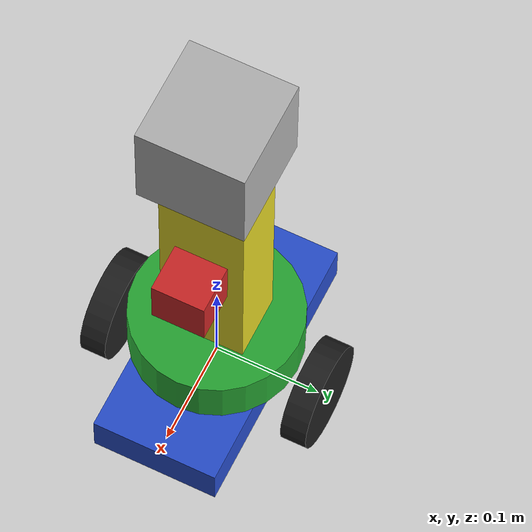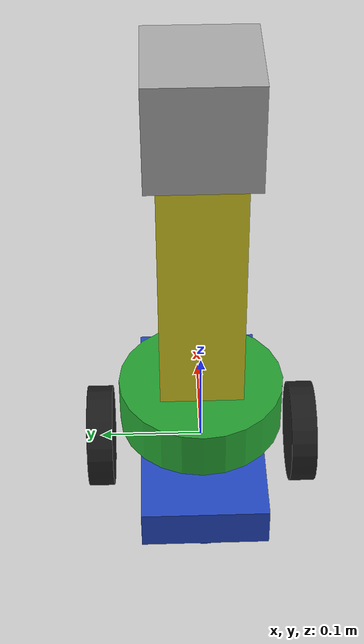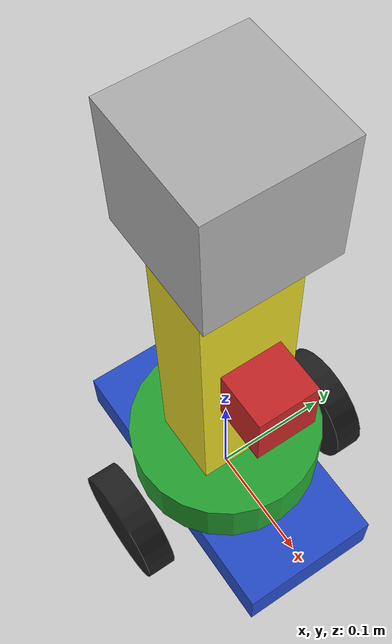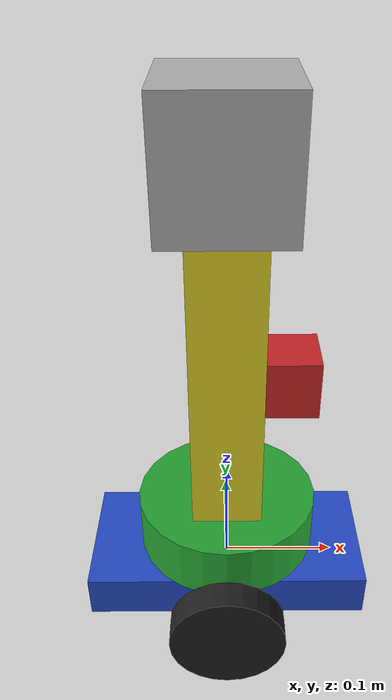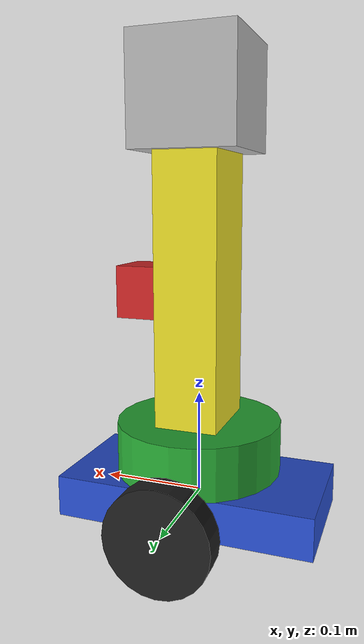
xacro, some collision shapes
<?xml version='1.0'?>

<robot name="robot_custom" xmlns:xacro="http://www.ros.org/wiki/xacro">

  <xacro:include filename="$(find udacity_bot)/urdf/robot_custom.gazebo" />

  <link name="robot_footprint"></link>

  <joint name="robot_footprint_joint" type="fixed">
    <origin xyz="0 0 0" rpy="0 0 0" />
    <parent link="robot_footprint"/>
    <child link="chassis" />
  </joint>

    <link name='chassis'>
    <pose>0 0 0.15 0 0 0</pose>

    <inertial>
      <mass value="8.0"/>
      <origin xyz="0.0 0 0" rpy=" 0 0 0"/>
      <inertia
          ixx="0.1" ixy="0" ixz="0"
          iyy="0.1" iyz="0"
          izz="0.1"
      />
    </inertial>

    <collision name='collision'>
      <origin xyz="0 0 0" rpy=" 0 0 0"/>
      <geometry>
        <box size=".25 .12 .04"/>
      </geometry>
    </collision>

    <visual name='chassis_visual'>
      <origin xyz="0 0 0" rpy=" 0 0 0"/>
      <geometry>
        <box size=".25 .12 .04"/>
      </geometry>
    </visual>

    <collision name='back_caster_collision'>
      <origin xyz="-0.09 0 -0.025" rpy=" 0 0 0"/>
      <geometry>
        <sphere radius="0.02499"/>
      </geometry>
    </collision>

    <visual name='back_caster_visual'>
      <origin xyz="-0.09 0  -0.025" rpy=" 0 0 0"/>
      <geometry>
        <sphere radius="0.025"/>
      </geometry>
    </visual>

    <collision name='front_caster_collision'>
      <origin xyz="0.09 0 -0.025" rpy=" 0 0 0"/>
      <geometry>
        <sphere radius="0.02499"/>
      </geometry>
    </collision>

    <visual name='front_caster_visual'>
      <origin xyz="0.09 0 -0.025" rpy=" 0 0 0"/>
      <geometry>
        <sphere radius="0.025"/>
      </geometry>
    </visual>

    </link>

    <link name='rectangle_link'>
    <inertial>
      <mass value="2.0"/>
      <origin xyz="0.0 0 0.0" rpy=" 0 1.57075 0"/>
      <inertia
          ixx="0.1" ixy="0" ixz="0"
          iyy="0.1" iyz="0"
          izz="0.1"
      />
    </inertial>

   <visual>
    <origin xyz="0.0 0 0.0" rpy=" 0 1.57075  0"/>
    <geometry>
     <box size="0.3 0.08 0.06"/>
    </geometry>
   </visual>
  </link>

  <joint name='base_to_rectangle_link' type="fixed">
   <parent link="chassis"/>
   <child link="rectangle_link"/>
   <origin xyz="0.0 0.0 0.2"/>
  </joint>

  <link name='cylindrical_link'>
    <inertial>
      <mass value="4.0"/>
      <origin xyz="0.0 0 0.0" rpy=" 0 0 0"/>
      <inertia
          ixx="0.1" ixy="0" ixz="0"
          iyy="0.1" iyz="0"
          izz="0.1"
      />
    </inertial>

   <visual>
    <origin xyz="0.0 0 0.0" rpy=" 0 0 0"/>
    <geometry>
     <cylinder radius="0.08" length="0.05"/>
    </geometry>
   </visual>
  </link>

  <joint name='base_to_cylindrical_link' type="fixed">
   <parent link="chassis"/>
   <child link="cylindrical_link"/>
   <origin xyz="0.0 0.0 0.05"/>
  </joint>

  <link name='left_wheel'>

    <inertial>
      <mass value="0.5"/>
      <origin xyz="0.0 0 0" rpy=" 0 1.5707 1.5707"/>
      <inertia
          ixx="0.1" ixy="0" ixz="0"
          iyy="0.1" iyz="0"
          izz="0.1"
      />
    </inertial>

    <collision name='collision'>
      <origin xyz="0 0 0" rpy=" 0 1.5707 1.5707"/>
      <geometry>
        <cylinder radius="0.05" length="0.025"/>
      </geometry>
    </collision>

    <visual name='left_wheel_visual'>
      <origin xyz="0 0 0" rpy=" 0 1.5707 1.5707"/>
      <geometry>
        <cylinder radius="0.05" length="0.025"/>
      </geometry>
    </visual>

  </link>

  <link name='right_wheel'>

    <inertial>
      <mass value="0.5"/>
      <origin xyz="0.0 0 -0.05" rpy=" 0 1.5707 1.5707"/>
      <inertia
          ixx="0.1" ixy="0" ixz="0"
          iyy="0.1" iyz="0"
          izz="0.1"
      />
    </inertial>

    <collision name='collision'>
      <origin xyz="0 0 0" rpy=" 0 1.5707 1.5707"/>
      <geometry>
        <cylinder radius="0.05" length="0.025"/>
      </geometry>
    </collision>

    <visual name='right_wheel_visual'>
      <origin xyz="0 0 0" rpy=" 0 1.5707 1.5707"/>
      <geometry>
        <cylinder radius="0.05" length="0.025"/>
      </geometry>
    </visual>

  </link>

  <joint type="continuous" name="left_wheel_hinge">
    <origin xyz="0 0.1 0.0" rpy="0 0 0"/>
    <child link="left_wheel"/>
    <parent link="chassis"/>
    <axis xyz="0 1 0" rpy="0 0 0"/>
    <limit effort="5000" velocity="500"/>
    <dynamics damping="1.0" friction="1.0"/>
  </joint>

  <joint type="continuous" name="right_wheel_hinge">
    <origin xyz="0 -0.1 0.0" rpy="0 0 0"/>
    <child link="right_wheel"/>
    <parent link="chassis"/>
    <axis xyz="0 1 0" rpy="0 0 0"/>
    <limit effort="5000" velocity="500"/>
    <dynamics damping="1.0" friction="1.0"/>
  </joint>

  <link name='camera'>

    <inertial>
      <mass value="0.1"/>
      <origin xyz="0 0 0" rpy="0 0 0"/>
      <inertia
          ixx="1e-6" ixy="0" ixz="0"
          iyy="1e-6" iyz="0"
          izz="1e-6"
      />
    </inertial>

    <collision name='collision'>
      <origin xyz="0 0 0" rpy="0 0 0"/>
      <geometry>
        <box size="0.05 0.05 0.05"/>
      </geometry>
    </collision>

    <visual name='camera_visual'>
      <origin xyz="0 0 0" rpy="0 0 0"/>
      <geometry>
        <box size="0.05 0.05 0.05"/>
      </geometry>
    </visual>

  </link>

  <joint type="fixed" name="camera_joint">
    <origin xyz="0.05 0.0 0.2" rpy="0 0 0"/>
    <child link="camera"/>
    <parent link="chassis"/>
  </joint>

  <link name='hokuyo'>

    <inertial>
      <mass value="0.1"/>
      <origin xyz="0 0 0" rpy="0 0 0"/>
      <inertia
          ixx="1e-6" ixy="0" ixz="0"
          iyy="1e-6" iyz="0"
          izz="1e-6"
      />
    </inertial>

    <collision name='collision'>
      <origin xyz="0 0 0" rpy="0 0 0"/>
      <geometry>
        <box size="0.1 0.1 0.1"/>
      </geometry>
    </collision>

    <visual name='hokuyo_visual'>
      <origin xyz="0 0 0" rpy="0 0 0"/>
      <geometry>
        <mesh filename="package://udacity_bot/meshes/hokuyo.dae"/>
      </geometry>
    </visual>

  </link>

  <joint type="fixed" name="hokuyo_joint">
    <origin xyz="0.0 0 0.38" rpy="0 0 0"/>
    <child link="hokuyo"/>
    <parent link="chassis"/>
  </joint>

</robot>
